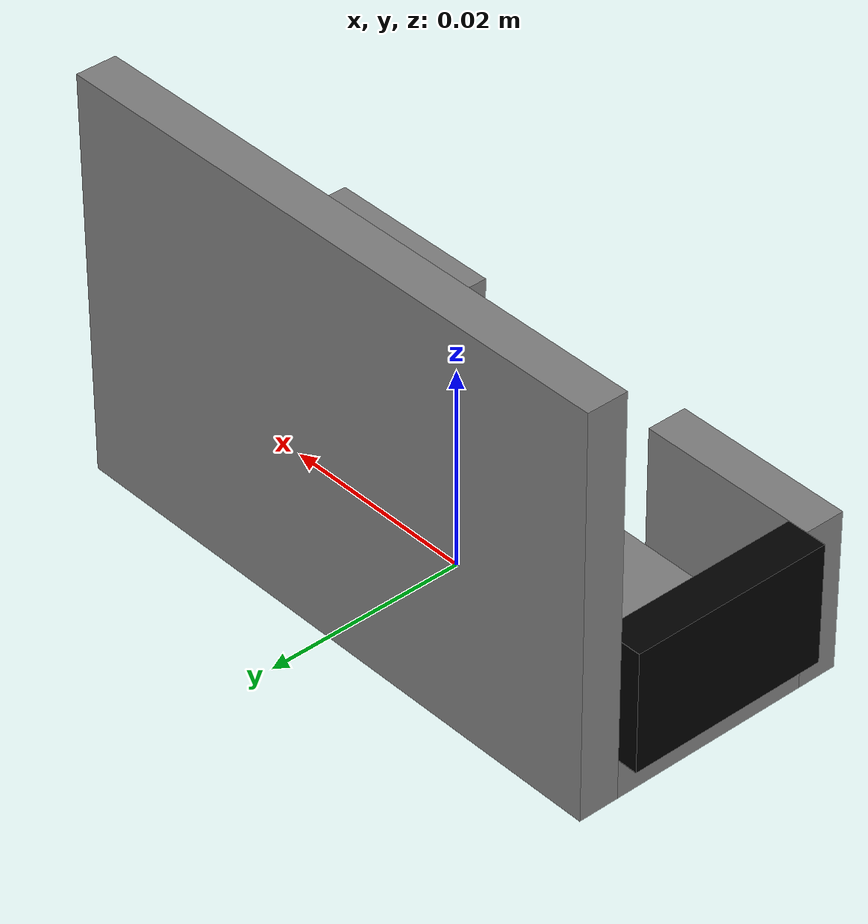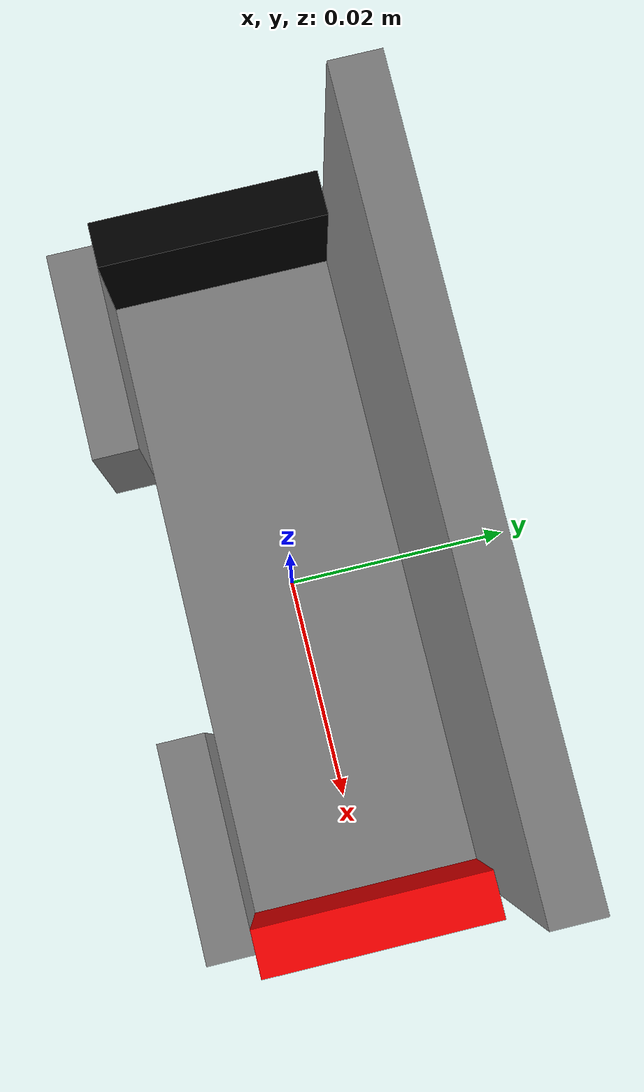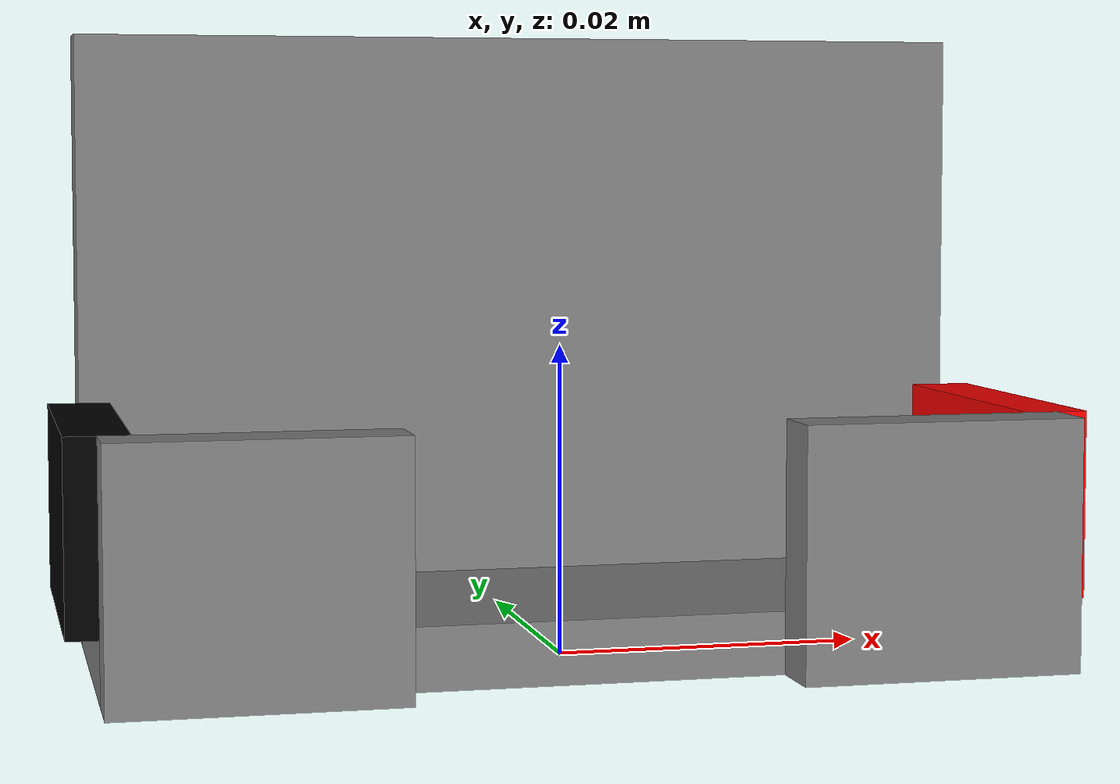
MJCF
<mujoco model="AAA_charger">
    <worldbody>
        <body name="charger_AAA" pos="0 0 0">

            <!-- Back wall -->
            <geom name="back_wall" type="box" pos="0 0.012 0.020" size="0.030 0.002 0.020"
                  rgba="0.5 0.5 0.5 1" density="1200" friction="1 0.005 0.0001" condim="4"/>
            <!-- Color: Light gray -->

            <!-- Bottom -->
            <geom name="bottom" type="box" pos="0 0 0.002" size="0.030 0.01 0.002" rgba=" 0.5 0.5 0.5 1" density="1200" friction="1 0.005 0.0001" condim="4"/>
            <!-- Bottom right -->

            <!-- Right wall -->
            <geom name="right_wall" type="box" pos="0.03 0 0.010" size="0.002 0.01 0.006" density="1200"
                  rgba="1 0 0 1" friction="1 0.005 0.0001" condim="4"/>
            <!-- Color: Red -->

            <!-- Right hook -->
            <geom name="right_hook" type="box" pos="0.021 -0.012 0.008" size="0.009 0.002 0.008" density="1200"
                  rgba="0.5 0.5 0.5 1" friction="1 0.005 0.0001" condim="4"/>
            <!-- Color: Light gray -->

            <!-- Bottom left -->

            <!-- Left wall -->
            <geom name="left_wall" type="box" pos="-0.03 0 0.010" size="0.002 0.01 0.006" density="1200"
                  rgba="0 0 0 1" friction="1 0.005 0.0001" condim="4"/>
            <!-- Color: Black -->

            <!-- Left hook -->
            <geom name="left_hook" type="box" pos="-0.021 -0.012 0.008" size="0.009 0.002 0.008" density="1200"
                  rgba="0.5 0.5 0.5 1" friction="1 0.005 0.0001" condim="4"/>
            <!-- Color: Light gray -->

            <!-- Make it one solid object -->
        </body>
    </worldbody>
</mujoco>
